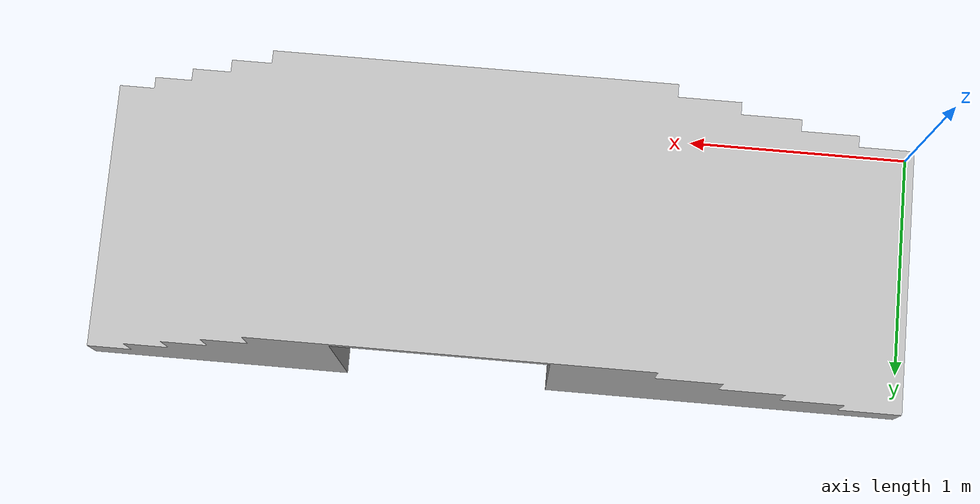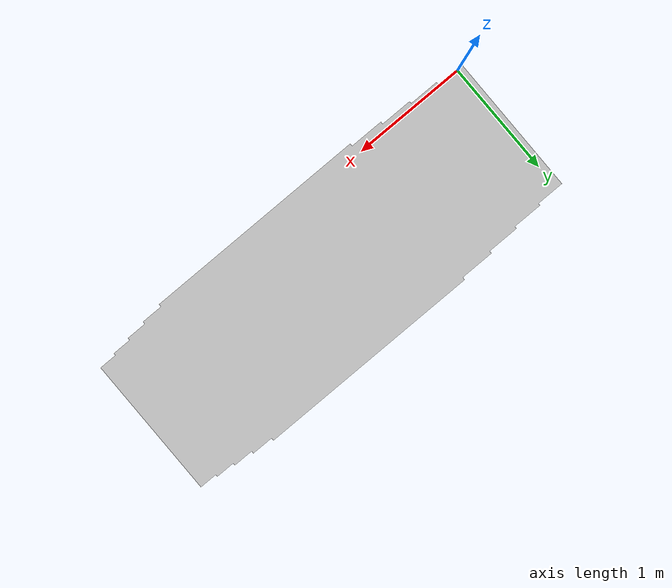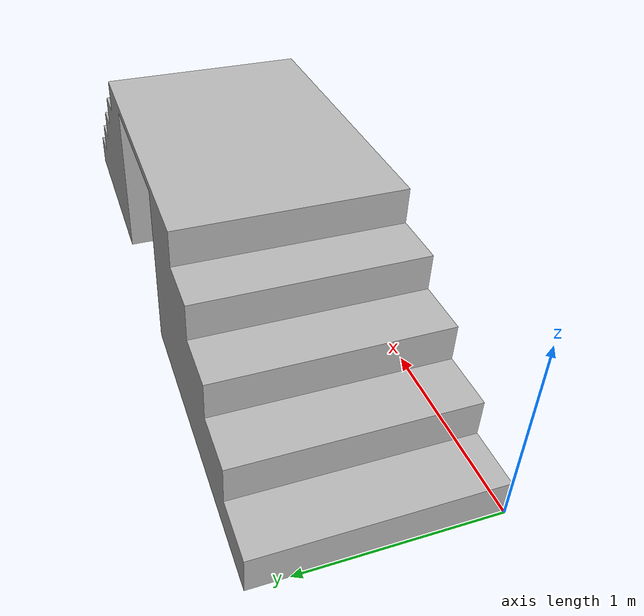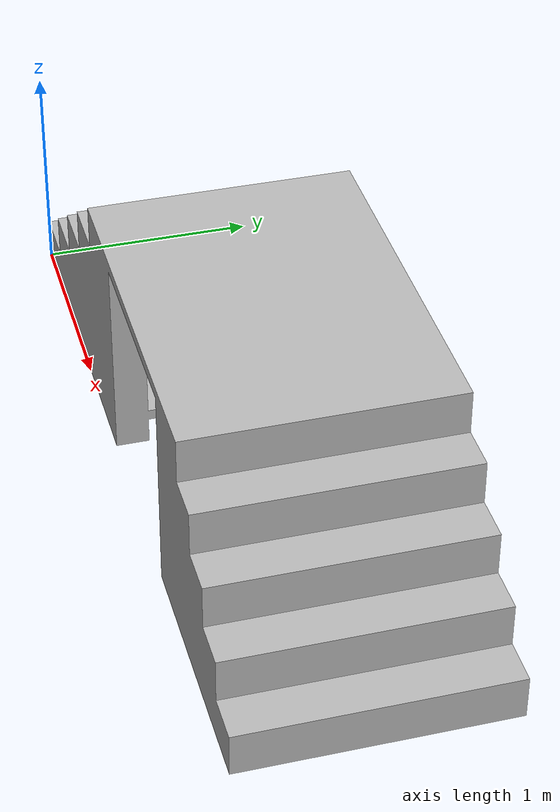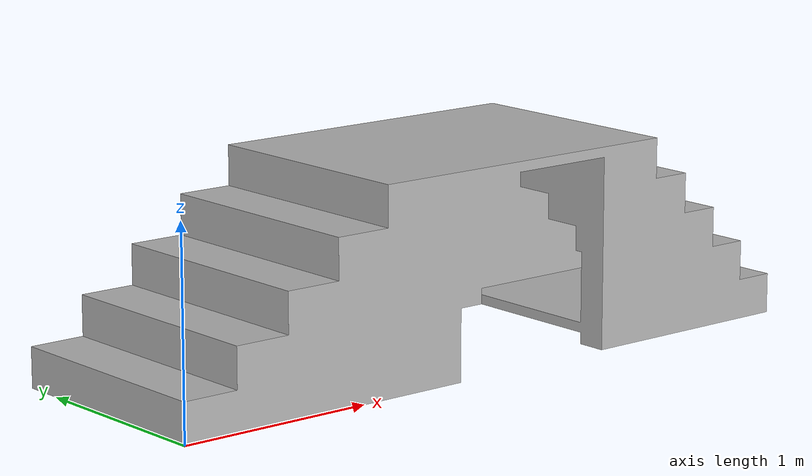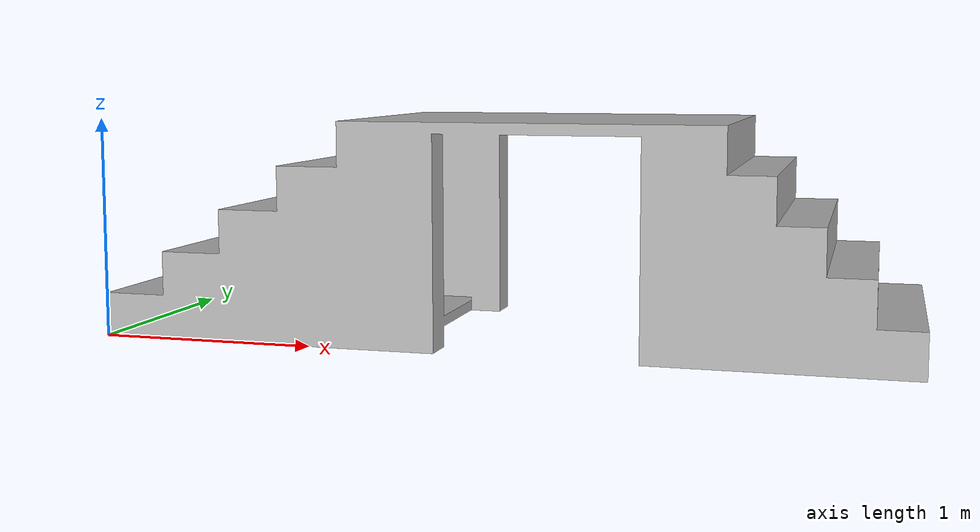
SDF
<?xml version='1.0'?>
<sdf version='1.6'>
  <model name='terrain-stairs_2'>
    <static>true</static>
    <link name='base_link'>
      <pose frame=''>0 0 0 0 -0 0</pose>
      <inertial>
        <pose frame=''>1.8257 0.6 0.43907 0 -0 0</pose>
        <mass>314.56</mass>
        <inertia>
          <ixx>86.368</ixx>
          <ixy>-1.1173e-14</ixy>
          <ixz>-3.7269</ixz>
          <iyy>77.018</iyy>
          <iyz>-3.2926e-15</iyz>
          <izz>101.08</izz>
        </inertia>
      </inertial>
      <collision name='base_link_collision'>
        <pose frame=''>0 0 0 0 -0 0</pose>
        <geometry>
          <mesh>
            <scale>1 1 1</scale>
            <uri>model://terrain-stairs_2/meshes/base_link.STL</uri>
          </mesh>
        </geometry>
        <surface>
          <contact>
            <collide_bitmask>65535</collide_bitmask>
            <ode/>
          </contact>
          <friction>
            <ode>
              <mu>2</mu>
              <mu2>2</mu2>
            </ode>
            <torsional>
              <ode/>
            </torsional>
          </friction>
          <bounce/>
        </surface>
      </collision>
      <visual name='base_link_visual'>
        <pose frame=''>0 0 0 0 -0 0</pose>
        <geometry>
          <mesh>
            <scale>1 1 1</scale>
            <uri>model://terrain-stairs_2/meshes/base_link.dae</uri>
          </mesh>
        </geometry>
      </visual>
    </link>
  </model>
</sdf>
